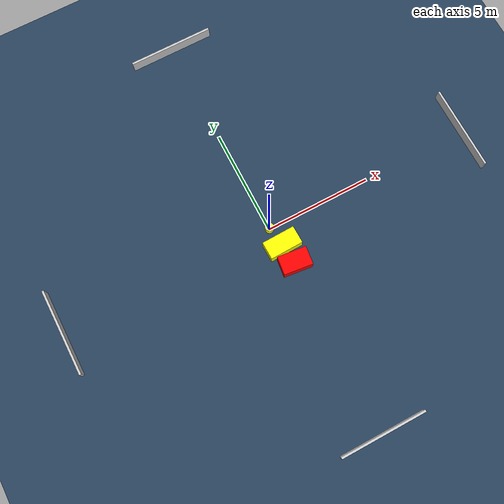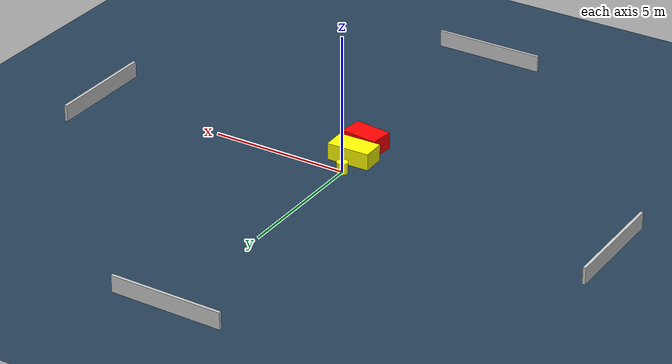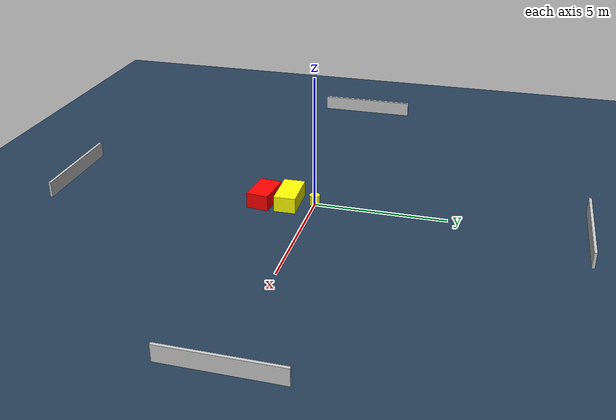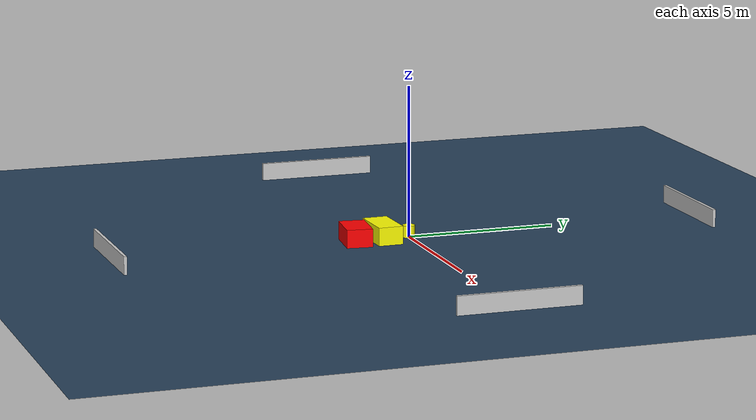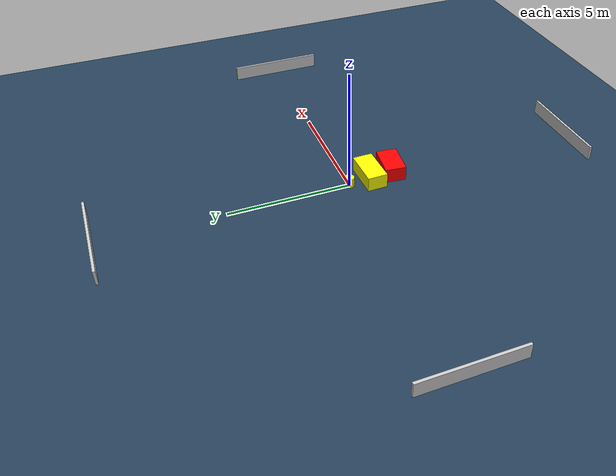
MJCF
<?xml version="1.0" ?>
<mujoco model="generated_environment">
  <option timestep="0.01" integrator="RK4" cone="elliptic"/>
  <default>
    <geom density="1"/>
  </default>
  <asset>
    <texture builtin="gradient" height="3072" name="skybox" rgb1="0.3 0.5 0.7" rgb2="0 0 0" type="skybox" width="512"/>
    <texture builtin="checker" height="300" name="groundplane" rgb1="0.2 0.3 0.4" rgb2="0.1 0.2 0.3" type="2d" width="300"/>
    <material name="groundplane" reflectance="0.2" texrepeat="5 5" texture="groundplane"/>
  </asset>
  <worldbody>
    <light dir="0 0 -1" directional="true" pos="0 0 1.5"/>
    <geom condim="3" friction="0.5 0.005 0.001" material="groundplane" name="floor" pos="0 0 0" size="0 0 0.05" type="plane"/>
    <body name="walls">
      <geom name="wall_1" condim="4" pos="-10.0 0.0 0.3" rgba="0.800000011920929 0.800000011920929 0.800000011920929 1.0" size="0.05 2.0 0.3" type="box"/>
      <geom name="wall_2" condim="4" pos="10.0 0.0 0.3" rgba="0.800000011920929 0.800000011920929 0.800000011920929 1.0" size="0.05 2.0 0.3" type="box"/>
      <geom name="wall_3" condim="4" pos="0.0 -10.0 0.3" rgba="0.800000011920929 0.800000011920929 0.800000011920929 1.0" size="2.0 0.05 0.3" type="box"/>
      <geom name="wall_4" condim="4" pos="0.0 10.0 0.3" rgba="0.800000011920929 0.800000011920929 0.800000011920929 1.0" size="2.0 0.05 0.3" type="box"/>
    </body>
    <body name="robot">
      <joint name="joint_x" type="slide" pos="0 0 0" axis="1 0 0"/>
      <joint name="joint_y" type="slide" pos="0 0 0" axis="0 1 0"/>
      <geom name="robot" type="cylinder" pos="0.0 0.0 0.2" size="0.2 0.2 0.0" mass="5.0" friction="1.0 0.005 0.0001" condim="4" rgba="1.0 1.0 0.0 1.0"/>
    </body>
    <body name="obstacle_1_movable">
      <geom name="obstacle_1_movable" condim="4" pos="0.1452968756917701 -0.9440028985740844 0.3" euler="0 0 181.43586574312596" friction="0.0 0.005 0.001" rgba="1.0 1.0 0.0 1.0" size="0.775817886936244 0.412559098796581 0.3" type="box" mass="0.1"/>
      <joint type="free"/>
    </body>
    <body name="obstacle_2_static">
      <geom name="obstacle_2_static" condim="4" pos="0.25585329442621313 -1.9126967898365965 0.3" euler="0 0 263.5160485485613" friction="0.0 0.005 0.001" rgba="1.0 0.0 0.0 1.0" size="0.4277715292475374 0.6780970761479449 0.3" type="box"/>
    </body>
  </worldbody>
  <actuator>
    <motor name="actuator_x" joint="joint_x" gear="1" ctrlrange="-1 1"/>
    <motor name="actuator_y" joint="joint_y" gear="1" ctrlrange="-1 1"/>
  </actuator>
</mujoco>
